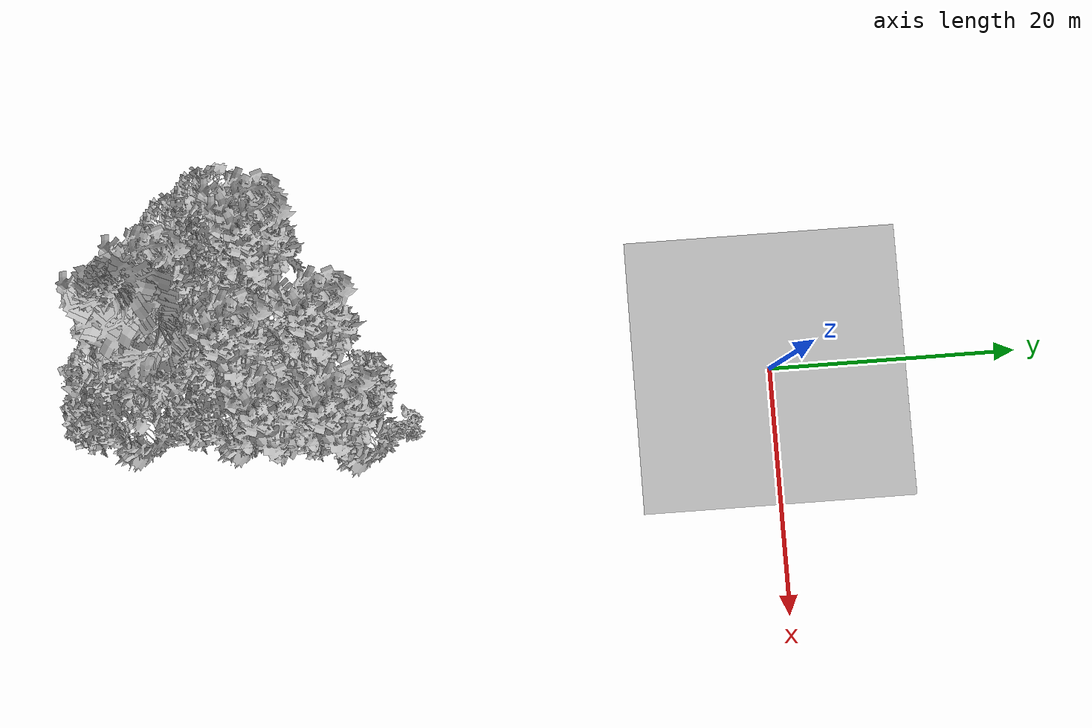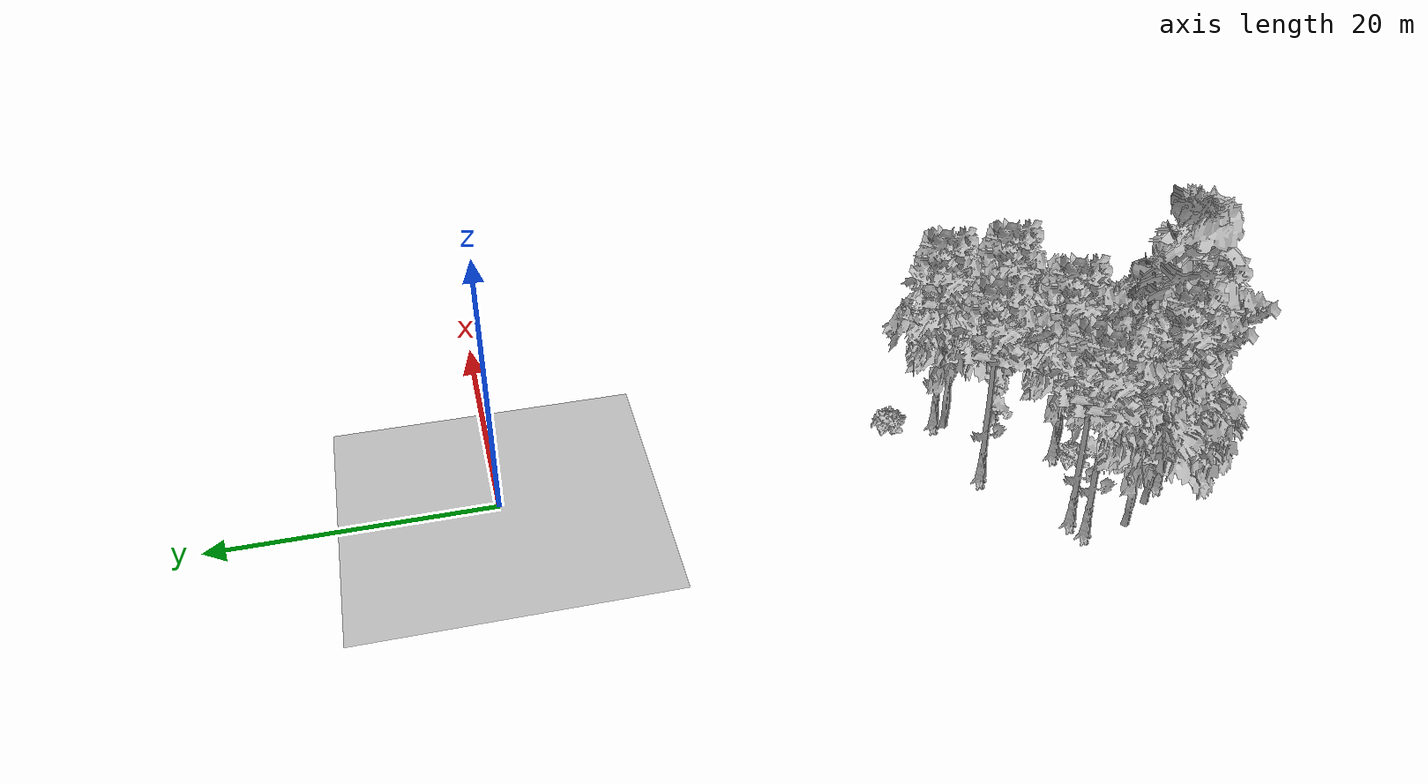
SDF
<sdf version="1.7">
 <world name="default">
  <model name="ground_plane">
   <static>1</static>
   <link name="link">
    <collision name="collision">
     <geometry><plane><normal>0 0 1</normal><size>100 100</size></plane></geometry>
     <surface><contact><ode><min_depth>0.01</min_depth><max_vel>0</max_vel></ode></contact></surface>
    </collision>
    <visual name="grass">
     <cast_shadows>0</cast_shadows>
     <geometry>
      <mesh>
       <scale>0.41000000000000003 0.41000000000000003 0.1</scale>
       <uri>file://grass_plane/meshes/grass_plane.dae</uri>
      </mesh>
     </geometry>
    </visual>
   </link>
  </model>
  <model name="Tree 63">
   <static>1</static>
   <pose>-4.091154610156643 -40.03539026270162 0 1.57079 -0 0</pose>
   <link name="link">
    <collision name="collision">
     <geometry><mesh><scale>5 5 5</scale><uri>model://tree_2/meshes/tree_2.obj</uri></mesh></geometry>
    </collision>
    <visual name="visual">
     <geometry><mesh><scale>5 5 5</scale><uri>model://tree_2/meshes/tree_2.obj</uri></mesh></geometry>
    </visual>
   </link>
  </model>
  <model name="Tree 69">
   <static>1</static>
   <pose>1.0135895242600697 -33.415363400066056 0 1.57079 -0 0</pose>
   <link name="link">
    <collision name="collision">
     <geometry><mesh><scale>5 5 5</scale><uri>model://tree_2/meshes/tree_2.obj</uri></mesh></geometry>
    </collision>
    <visual name="visual">
     <geometry><mesh><scale>5 5 5</scale><uri>model://tree_2/meshes/tree_2.obj</uri></mesh></geometry>
    </visual>
   </link>
  </model>
  <model name="Tree 76">
   <static>1</static>
   <pose>-5.858938110843198 -43.6910968262304 0 1.57079 -0 0</pose>
   <link name="link">
    <collision name="collision">
     <geometry><mesh><scale>5 5 5</scale><uri>model://tree_2/meshes/tree_2.obj</uri></mesh></geometry>
    </collision>
    <visual name="visual">
     <geometry><mesh><scale>5 5 5</scale><uri>model://tree_2/meshes/tree_2.obj</uri></mesh></geometry>
    </visual>
   </link>
  </model>
  <model name="Tree 119">
   <static>1</static>
   <pose>1.3344344062003373 -37.458925748966536 0 1.57079 -0 0</pose>
   <link name="link">
    <collision name="collision">
     <geometry><mesh><scale>5 5 5</scale><uri>model://tree_9/meshes/tree_9.obj</uri></mesh></geometry>
    </collision>
    <visual name="visual">
     <geometry><mesh><scale>5 5 5</scale><uri>model://tree_9/meshes/tree_9.obj</uri></mesh></geometry>
    </visual>
   </link>
  </model>
  <model name="Tree 161">
   <static>1</static>
   <pose>-9.09563497129021 -45.561297958943825 0 1.57079 -0 0</pose>
   <link name="link">
    <collision name="collision">
     <geometry><mesh><scale>5 5 5</scale><uri>model://tree_9/meshes/tree_9.obj</uri></mesh></geometry>
    </collision>
    <visual name="visual">
     <geometry><mesh><scale>5 5 5</scale><uri>model://tree_9/meshes/tree_9.obj</uri></mesh></geometry>
    </visual>
   </link>
  </model>
  <model name="Tree 169">
   <static>1</static>
   <pose>-0.28877620983701746 -42.22154718238013 0 1.57079 -0 0</pose>
   <link name="link">
    <collision name="collision">
     <geometry><mesh><scale>5 5 5</scale><uri>model://tree_2/meshes/tree_2.obj</uri></mesh></geometry>
    </collision>
    <visual name="visual">
     <geometry><mesh><scale>5 5 5</scale><uri>model://tree_2/meshes/tree_2.obj</uri></mesh></geometry>
    </visual>
   </link>
  </model>
  <model name="Tree 194">
   <static>1</static>
   <pose>-10.674893969741866 -43.89011979655173 0 1.57079 -0 0</pose>
   <link name="link">
    <collision name="collision">
     <geometry><mesh><scale>5 5 5</scale><uri>model://tree_2/meshes/tree_2.obj</uri></mesh></geometry>
    </collision>
    <visual name="visual">
     <geometry><mesh><scale>5 5 5</scale><uri>model://tree_2/meshes/tree_2.obj</uri></mesh></geometry>
    </visual>
   </link>
  </model>
  <model name="Tree 219">
   <static>1</static>
   <pose>-0.5966813129942352 -49.77935298906042 0 1.57079 -0 0</pose>
   <link name="link">
    <collision name="collision">
     <geometry><mesh><scale>5 5 5</scale><uri>model://tree_2/meshes/tree_2.obj</uri></mesh></geometry>
    </collision>
    <visual name="visual">
     <geometry><mesh><scale>5 5 5</scale><uri>model://tree_2/meshes/tree_2.obj</uri></mesh></geometry>
    </visual>
   </link>
  </model>
  <model name="Tree 233">
   <static>1</static>
   <pose>-6.690308977062074 -48.672245581805626 0 1.57079 -0 0</pose>
   <link name="link">
    <collision name="collision">
     <geometry><mesh><scale>5 5 5</scale><uri>model://tree_9/meshes/tree_9.obj</uri></mesh></geometry>
    </collision>
    <visual name="visual">
     <geometry><mesh><scale>5 5 5</scale><uri>model://tree_9/meshes/tree_9.obj</uri></mesh></geometry>
    </visual>
   </link>
  </model>
  <model name="Tree 252">
   <static>1</static>
   <pose>-6.17023692253904 -46.401868441022906 0 1.57079 -0 0</pose>
   <link name="link">
    <collision name="collision">
     <geometry><mesh><scale>5 5 5</scale><uri>model://tree_4/meshes/tree_4.obj</uri></mesh></geometry>
    </collision>
    <visual name="visual">
     <geometry><mesh><scale>5 5 5</scale><uri>model://tree_4/meshes/tree_4.obj</uri></mesh></geometry>
    </visual>
   </link>
  </model>
  <model name="Tree 315">
   <static>1</static>
   <pose>-5.314737197179326 -33.704215837697504 0 1.57079 -0 0</pose>
   <link name="link">
    <collision name="collision">
     <geometry><mesh><scale>5 5 5</scale><uri>model://tree_9/meshes/tree_9.obj</uri></mesh></geometry>
    </collision>
    <visual name="visual">
     <geometry><mesh><scale>5 5 5</scale><uri>model://tree_9/meshes/tree_9.obj</uri></mesh></geometry>
    </visual>
   </link>
  </model>
  <model name="Tree 321">
   <static>1</static>
   <pose>-4.120335537556677 -39.87581194692803 0 1.57079 -0 0</pose>
   <link name="link">
    <collision name="collision">
     <geometry><mesh><scale>5 5 5</scale><uri>model://tree_9/meshes/tree_9.obj</uri></mesh></geometry>
    </collision>
    <visual name="visual">
     <geometry><mesh><scale>5 5 5</scale><uri>model://tree_9/meshes/tree_9.obj</uri></mesh></geometry>
    </visual>
   </link>
  </model>
  <model name="Tree 340">
   <static>1</static>
   <pose>-5.858359761423948 -46.60760312460517 0 1.57079 -0 0</pose>
   <link name="link">
    <collision name="collision">
     <geometry><mesh><scale>5 5 5</scale><uri>model://tree_4/meshes/tree_4.obj</uri></mesh></geometry>
    </collision>
    <visual name="visual">
     <geometry><mesh><scale>5 5 5</scale><uri>model://tree_4/meshes/tree_4.obj</uri></mesh></geometry>
    </visual>
   </link>
  </model>
  <model name="Tree 382">
   <static>1</static>
   <pose>-12.502794408485933 -41.496224268251346 0 1.57079 -0 0</pose>
   <link name="link">
    <collision name="collision">
     <geometry><mesh><scale>5 5 5</scale><uri>model://tree_2/meshes/tree_2.obj</uri></mesh></geometry>
    </collision>
    <visual name="visual">
     <geometry><mesh><scale>5 5 5</scale><uri>model://tree_2/meshes/tree_2.obj</uri></mesh></geometry>
    </visual>
   </link>
  </model>
  <model name="Tree 443">
   <static>1</static>
   <pose>1.502526323058909 -32.739513805474594 0 1.57079 -0 0</pose>
   <link name="link">
    <collision name="collision">
     <geometry><mesh><scale>5 5 5</scale><uri>model://tree_9/meshes/tree_9.obj</uri></mesh></geometry>
    </collision>
    <visual name="visual">
     <geometry><mesh><scale>5 5 5</scale><uri>model://tree_9/meshes/tree_9.obj</uri></mesh></geometry>
    </visual>
   </link>
  </model>
  <model name="Tree 481">
   <static>1</static>
   <pose>-11.28890473278296 -37.854739529450065 0 1.57079 -0 0</pose>
   <link name="link">
    <collision name="collision">
     <geometry><mesh><scale>5 5 5</scale><uri>model://tree_9/meshes/tree_9.obj</uri></mesh></geometry>
    </collision>
    <visual name="visual">
     <geometry><mesh><scale>5 5 5</scale><uri>model://tree_9/meshes/tree_9.obj</uri></mesh></geometry>
    </visual>
   </link>
  </model>
  <model name="Tree 498">
   <static>1</static>
   <pose>-12.613063271764325 -38.31110781666888 0 1.57079 -0 0</pose>
   <link name="link">
    <collision name="collision">
     <geometry><mesh><scale>5 5 5</scale><uri>model://tree_9/meshes/tree_9.obj</uri></mesh></geometry>
    </collision>
    <visual name="visual">
     <geometry><mesh><scale>5 5 5</scale><uri>model://tree_9/meshes/tree_9.obj</uri></mesh></geometry>
    </visual>
   </link>
  </model>
  <model name="Bush 0">
   <static>1</static>
   <pose>-3.395585909327437 -49.550565277100986 0 1.57079 -0 0</pose>
   <link name="link">
    <collision name="collision">
     <geometry><mesh><scale>2 2 2</scale><uri>model://bush_2/meshes/bush_2.obj</uri></mesh></geometry>
    </collision>
    <visual name="visual">
     <geometry><mesh><scale>5 5 5</scale><uri>model://bush_2/meshes/bush_2.obj</uri></mesh></geometry>
    </visual>
   </link>
  </model>
  <model name="Bush 13">
   <static>1</static>
   <pose>0.359586088505651 -46.38303250631039 0 1.57079 -0 0</pose>
   <link name="link">
    <collision name="collision">
     <geometry><mesh><scale>2 2 2</scale><uri>model://bush_2/meshes/bush_2.obj</uri></mesh></geometry>
    </collision>
    <visual name="visual">
     <geometry><mesh><scale>5 5 5</scale><uri>model://bush_2/meshes/bush_2.obj</uri></mesh></geometry>
    </visual>
   </link>
  </model>
  <model name="Bush 79">
   <static>1</static>
   <pose>-4.772169021881616 -41.28630666085863 0 1.57079 -0 0</pose>
   <link name="link">
    <collision name="collision">
     <geometry><mesh><scale>2 2 2</scale><uri>model://bush_2/meshes/bush_2.obj</uri></mesh></geometry>
    </collision>
    <visual name="visual">
     <geometry><mesh><scale>5 5 5</scale><uri>model://bush_2/meshes/bush_2.obj</uri></mesh></geometry>
    </visual>
   </link>
  </model>
  <model name="Bush 84">
   <static>1</static>
   <pose>-1.0724358951023092 -43.21633453359717 0 1.57079 -0 0</pose>
   <link name="link">
    <collision name="collision">
     <geometry><mesh><scale>2 2 2</scale><uri>model://bush_4/meshes/bush_4.obj</uri></mesh></geometry>
    </collision>
    <visual name="visual">
     <geometry><mesh><scale>5 5 5</scale><uri>model://bush_4/meshes/bush_4.obj</uri></mesh></geometry>
    </visual>
   </link>
  </model>
  <model name="Bush 105">
   <static>1</static>
   <pose>2.393099845630843 -29.61886968299239 0 1.57079 -0 0</pose>
   <link name="link">
    <collision name="collision">
     <geometry><mesh><scale>2 2 2</scale><uri>model://bush_2/meshes/bush_2.obj</uri></mesh></geometry>
    </collision>
    <visual name="visual">
     <geometry><mesh><scale>5 5 5</scale><uri>model://bush_2/meshes/bush_2.obj</uri></mesh></geometry>
    </visual>
   </link>
  </model>
 </world>
</sdf>
